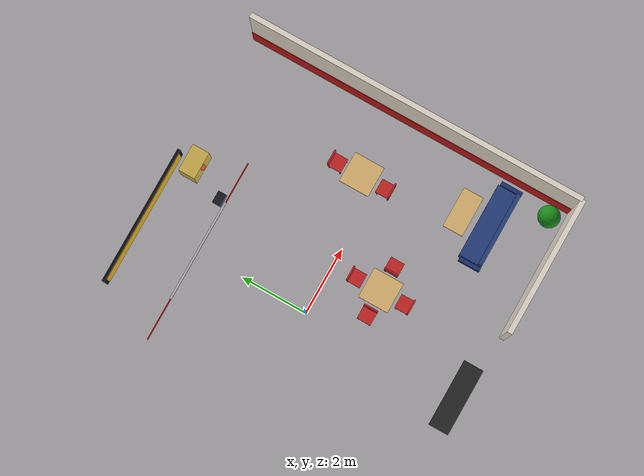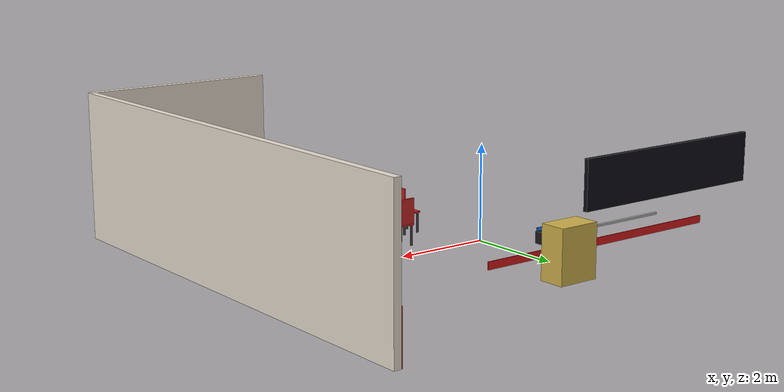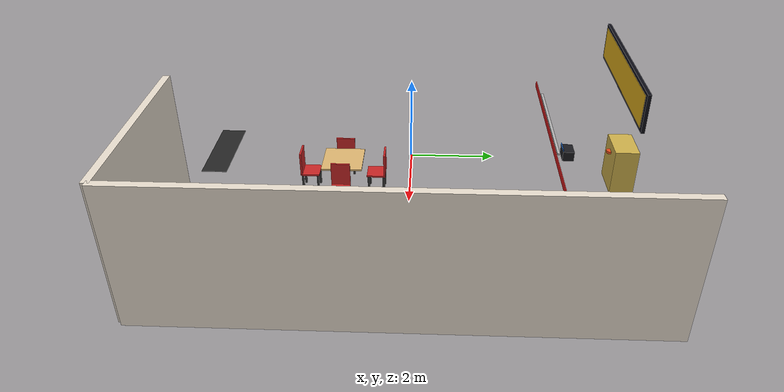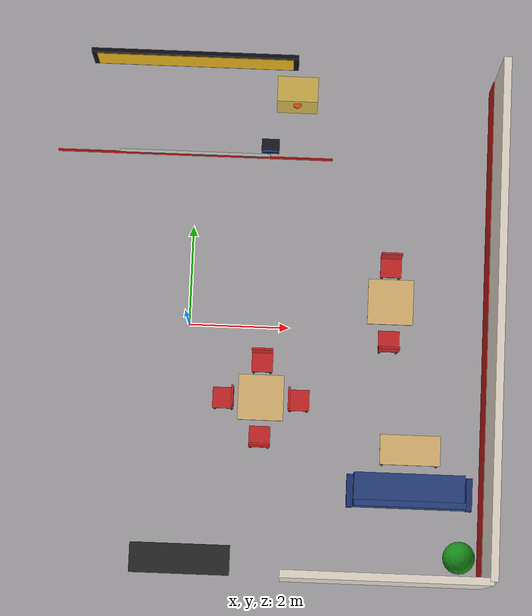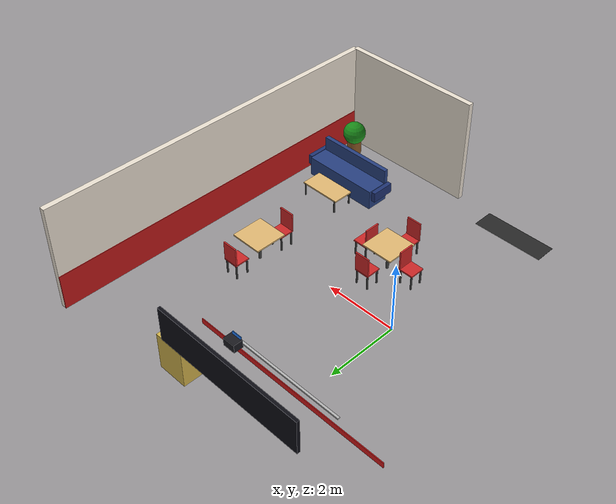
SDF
<sdf version="1.9">
 <world name="mcdonalds_cafe">
  <model name="wall_front_right">
   <static>true</static>
   <pose>4 -5.0 1.5 0 0 0</pose>
   <link name="link">
    <collision name="col"><geometry><box><size>4 0.15 3.0</size></box></geometry></collision>
    <visual name="vis">
     <geometry><box><size>4 0.15 3.0</size></box></geometry>
     <material><ambient>0.92 0.88 0.82 1</ambient><diffuse>0.92 0.88 0.82 1</diffuse></material>
    </visual>
   </link>
  </model>
  <model name="wall_right">
   <static>true</static>
   <pose>6.0 0 1.5 0 0 0</pose>
   <link name="link">
    <collision name="col"><geometry><box><size>0.15 10 3.0</size></box></geometry></collision>
    <visual name="vis">
     <geometry><box><size>0.15 10 3.0</size></box></geometry>
     <material><ambient>0.92 0.88 0.82 1</ambient><diffuse>0.92 0.88 0.82 1</diffuse></material>
    </visual>
   </link>
  </model>
  <model name="wainscot_right">
   <static>true</static>
   <pose>5.93 0 0.5 0 0 0</pose>
   <link name="link">
    <visual name="vis">
     <geometry><box><size>0.05 10 1.0</size></box></geometry>
     <material><ambient>0.75 0.1 0.1 1</ambient><diffuse>0.75 0.1 0.1 1</diffuse></material>
    </visual>
   </link>
  </model>
  <model name="counter_stripe">
   <static>true</static>
   <pose>0 3.345 0.7 0 0 0</pose>
   <link name="link">
    <visual name="vis">
     <geometry><box><size>5.5 0.02 0.15</size></box></geometry>
     <material><ambient>0.85 0.1 0.1 1</ambient><diffuse>0.85 0.1 0.1 1</diffuse></material>
    </visual>
   </link>
  </model>
  <model name="cash_register_2">
   <static>true</static>
   <pose>1.5 3.5 1.05 0 0 0</pose>
   <link name="link">
    <collision name="col"><geometry><box><size>0.35 0.25 0.22</size></box></geometry></collision>
    <visual name="vis">
     <geometry><box><size>0.35 0.25 0.22</size></box></geometry>
     <material>
      <ambient>0.1 0.1 0.12 1</ambient>
      <diffuse>0.1 0.1 0.12 1</diffuse>
      <specular>0.4 0.4 0.4 1</specular>
     </material>
    </visual>
    <visual name="screen">
     <pose>0 -0.1 0.08 0.3 0 0</pose>
     <geometry><box><size>0.28 0.02 0.18</size></box></geometry>
     <material>
      <ambient>0.1 0.4 0.8 1</ambient>
      <diffuse>0.1 0.4 0.8 1</diffuse>
      <emissive>0.05 0.2 0.5 1</emissive>
     </material>
    </visual>
   </link>
  </model>
  <model name="menu_board">
   <static>true</static>
   <pose>0 4.9 2.3 0 0 0</pose>
   <link name="link">
    <visual name="vis">
     <geometry><box><size>4.0 0.08 0.9</size></box></geometry>
     <material>
      <ambient>0.05 0.05 0.08 1</ambient>
      <diffuse>0.05 0.05 0.08 1</diffuse>
      <emissive>0.02 0.02 0.05 1</emissive>
     </material>
    </visual>
    <visual name="menu_screen">
     <pose>0 -0.05 0 0 0 0</pose>
     <geometry><box><size>3.8 0.01 0.75</size></box></geometry>
     <material>
      <ambient>0.9 0.7 0.1 1</ambient>
      <diffuse>0.9 0.7 0.1 1</diffuse>
      <emissive>0.4 0.3 0.05 1</emissive>
     </material>
    </visual>
   </link>
  </model>
  <model name="pickup_rail">
   <static>true</static>
   <pose>0 3.32 1.0 0 0 0</pose>
   <link name="link">
    <collision name="col"><geometry><box><size>3.0 0.06 0.04</size></box></geometry></collision>
    <visual name="vis">
     <geometry><box><size>3.0 0.06 0.04</size></box></geometry>
     <material>
      <ambient>0.7 0.7 0.7 1</ambient>
      <diffuse>0.7 0.7 0.7 1</diffuse>
      <specular>0.9 0.9 0.9 1</specular>
     </material>
    </visual>
   </link>
  </model>
  <model name="table_2">
   <static>true</static>
   <pose>1.5 -1.5 0.75 0 0 0</pose>
   <link name="link">
    <collision name="col"><geometry><box><size>0.9 0.9 0.04</size></box></geometry></collision>
    <visual name="vis">
     <geometry><box><size>0.9 0.9 0.04</size></box></geometry>
     <material>
      <ambient>0.88 0.72 0.45 1</ambient>
      <diffuse>0.88 0.72 0.45 1</diffuse>
      <specular>0.3 0.3 0.3 1</specular>
     </material>
    </visual>
   </link>
  </model>
  <model name="table_2_leg">
   <static>true</static>
   <pose>1.5 -1.5 0.38 0 0 0</pose>
   <link name="link">
    <collision name="col">
     <geometry><cylinder><radius>0.04</radius><length>0.75</length></cylinder></geometry>
    </collision>
    <visual name="vis">
     <geometry><cylinder><radius>0.04</radius><length>0.75</length></cylinder></geometry>
     <material><ambient>0.25 0.25 0.25 1</ambient><diffuse>0.25 0.25 0.25 1</diffuse></material>
    </visual>
   </link>
  </model>
  <model name="chair_t2_front">
   <static>true</static>
   <pose>1.5 -2.25 0 0 0 0</pose>
   <link name="link">
    <visual name="seat">
     <pose>0 0 0.44 0 0 0</pose>
     <geometry><box><size>0.42 0.42 0.04</size></box></geometry>
     <material><ambient>0.8 0.15 0.15 1</ambient><diffuse>0.8 0.15 0.15 1</diffuse></material>
    </visual>
    <visual name="back">
     <pose>0 -0.19 0.72 0 0 0</pose>
     <geometry><box><size>0.42 0.04 0.52</size></box></geometry>
     <material><ambient>0.8 0.15 0.15 1</ambient><diffuse>0.8 0.15 0.15 1</diffuse></material>
    </visual>
    <visual name="leg_fl">
     <pose>0.17 0.17 0.22 0 0 0</pose>
     <geometry><cylinder><radius>0.025</radius><length>0.44</length></cylinder></geometry>
     <material><ambient>0.2 0.2 0.2 1</ambient><diffuse>0.2 0.2 0.2 1</diffuse></material>
    </visual>
    <visual name="leg_fr">
     <pose>-0.17 0.17 0.22 0 0 0</pose>
     <geometry><cylinder><radius>0.025</radius><length>0.44</length></cylinder></geometry>
     <material><ambient>0.2 0.2 0.2 1</ambient><diffuse>0.2 0.2 0.2 1</diffuse></material>
    </visual>
    <visual name="leg_bl">
     <pose>0.17 -0.17 0.22 0 0 0</pose>
     <geometry><cylinder><radius>0.025</radius><length>0.44</length></cylinder></geometry>
     <material><ambient>0.2 0.2 0.2 1</ambient><diffuse>0.2 0.2 0.2 1</diffuse></material>
    </visual>
    <visual name="leg_br">
     <pose>-0.17 -0.17 0.22 0 0 0</pose>
     <geometry><cylinder><radius>0.025</radius><length>0.44</length></cylinder></geometry>
     <material><ambient>0.2 0.2 0.2 1</ambient><diffuse>0.2 0.2 0.2 1</diffuse></material>
    </visual>
    <collision name="col">
     <pose>0 0 0.44 0 0 0</pose>
     <geometry><box><size>0.42 0.42 0.04</size></box></geometry>
    </collision>
   </link>
  </model>
  <model name="chair_t2_back">
   <static>true</static>
   <pose>1.5 -0.75 0 0 0 3.1416</pose>
   <link name="link">
    <visual name="seat">
     <pose>0 0 0.44 0 0 0</pose>
     <geometry><box><size>0.42 0.42 0.04</size></box></geometry>
     <material><ambient>0.8 0.15 0.15 1</ambient><diffuse>0.8 0.15 0.15 1</diffuse></material>
    </visual>
    <visual name="back">
     <pose>0 -0.19 0.72 0 0 0</pose>
     <geometry><box><size>0.42 0.04 0.52</size></box></geometry>
     <material><ambient>0.8 0.15 0.15 1</ambient><diffuse>0.8 0.15 0.15 1</diffuse></material>
    </visual>
    <visual name="leg_fl">
     <pose>0.17 0.17 0.22 0 0 0</pose>
     <geometry><cylinder><radius>0.025</radius><length>0.44</length></cylinder></geometry>
     <material><ambient>0.2 0.2 0.2 1</ambient><diffuse>0.2 0.2 0.2 1</diffuse></material>
    </visual>
    <visual name="leg_fr">
     <pose>-0.17 0.17 0.22 0 0 0</pose>
     <geometry><cylinder><radius>0.025</radius><length>0.44</length></cylinder></geometry>
     <material><ambient>0.2 0.2 0.2 1</ambient><diffuse>0.2 0.2 0.2 1</diffuse></material>
    </visual>
    <visual name="leg_bl">
     <pose>0.17 -0.17 0.22 0 0 0</pose>
     <geometry><cylinder><radius>0.025</radius><length>0.44</length></cylinder></geometry>
     <material><ambient>0.2 0.2 0.2 1</ambient><diffuse>0.2 0.2 0.2 1</diffuse></material>
    </visual>
    <visual name="leg_br">
     <pose>-0.17 -0.17 0.22 0 0 0</pose>
     <geometry><cylinder><radius>0.025</radius><length>0.44</length></cylinder></geometry>
     <material><ambient>0.2 0.2 0.2 1</ambient><diffuse>0.2 0.2 0.2 1</diffuse></material>
    </visual>
    <collision name="col">
     <pose>0 0 0.44 0 0 0</pose>
     <geometry><box><size>0.42 0.42 0.04</size></box></geometry>
    </collision>
   </link>
  </model>
  <model name="chair_t2_left">
   <static>true</static>
   <pose>0.75 -1.5 0 0 0 1.5708</pose>
   <link name="link">
    <visual name="seat">
     <pose>0 0 0.44 0 0 0</pose>
     <geometry><box><size>0.42 0.42 0.04</size></box></geometry>
     <material><ambient>0.8 0.15 0.15 1</ambient><diffuse>0.8 0.15 0.15 1</diffuse></material>
    </visual>
    <visual name="back">
     <pose>0 -0.19 0.72 0 0 0</pose>
     <geometry><box><size>0.42 0.04 0.52</size></box></geometry>
     <material><ambient>0.8 0.15 0.15 1</ambient><diffuse>0.8 0.15 0.15 1</diffuse></material>
    </visual>
    <visual name="leg_fl">
     <pose>0.17 0.17 0.22 0 0 0</pose>
     <geometry><cylinder><radius>0.025</radius><length>0.44</length></cylinder></geometry>
     <material><ambient>0.2 0.2 0.2 1</ambient><diffuse>0.2 0.2 0.2 1</diffuse></material>
    </visual>
    <visual name="leg_fr">
     <pose>-0.17 0.17 0.22 0 0 0</pose>
     <geometry><cylinder><radius>0.025</radius><length>0.44</length></cylinder></geometry>
     <material><ambient>0.2 0.2 0.2 1</ambient><diffuse>0.2 0.2 0.2 1</diffuse></material>
    </visual>
    <visual name="leg_bl">
     <pose>0.17 -0.17 0.22 0 0 0</pose>
     <geometry><cylinder><radius>0.025</radius><length>0.44</length></cylinder></geometry>
     <material><ambient>0.2 0.2 0.2 1</ambient><diffuse>0.2 0.2 0.2 1</diffuse></material>
    </visual>
    <visual name="leg_br">
     <pose>-0.17 -0.17 0.22 0 0 0</pose>
     <geometry><cylinder><radius>0.025</radius><length>0.44</length></cylinder></geometry>
     <material><ambient>0.2 0.2 0.2 1</ambient><diffuse>0.2 0.2 0.2 1</diffuse></material>
    </visual>
    <collision name="col">
     <pose>0 0 0.44 0 0 0</pose>
     <geometry><box><size>0.42 0.42 0.04</size></box></geometry>
    </collision>
   </link>
  </model>
  <model name="chair_t2_right">
   <static>true</static>
   <pose>2.25 -1.5 0 0 0 -1.5708</pose>
   <link name="link">
    <visual name="seat">
     <pose>0 0 0.44 0 0 0</pose>
     <geometry><box><size>0.42 0.42 0.04</size></box></geometry>
     <material><ambient>0.8 0.15 0.15 1</ambient><diffuse>0.8 0.15 0.15 1</diffuse></material>
    </visual>
    <visual name="back">
     <pose>0 -0.19 0.72 0 0 0</pose>
     <geometry><box><size>0.42 0.04 0.52</size></box></geometry>
     <material><ambient>0.8 0.15 0.15 1</ambient><diffuse>0.8 0.15 0.15 1</diffuse></material>
    </visual>
    <visual name="leg_fl">
     <pose>0.17 0.17 0.22 0 0 0</pose>
     <geometry><cylinder><radius>0.025</radius><length>0.44</length></cylinder></geometry>
     <material><ambient>0.2 0.2 0.2 1</ambient><diffuse>0.2 0.2 0.2 1</diffuse></material>
    </visual>
    <visual name="leg_fr">
     <pose>-0.17 0.17 0.22 0 0 0</pose>
     <geometry><cylinder><radius>0.025</radius><length>0.44</length></cylinder></geometry>
     <material><ambient>0.2 0.2 0.2 1</ambient><diffuse>0.2 0.2 0.2 1</diffuse></material>
    </visual>
    <visual name="leg_bl">
     <pose>0.17 -0.17 0.22 0 0 0</pose>
     <geometry><cylinder><radius>0.025</radius><length>0.44</length></cylinder></geometry>
     <material><ambient>0.2 0.2 0.2 1</ambient><diffuse>0.2 0.2 0.2 1</diffuse></material>
    </visual>
    <visual name="leg_br">
     <pose>-0.17 -0.17 0.22 0 0 0</pose>
     <geometry><cylinder><radius>0.025</radius><length>0.44</length></cylinder></geometry>
     <material><ambient>0.2 0.2 0.2 1</ambient><diffuse>0.2 0.2 0.2 1</diffuse></material>
    </visual>
    <collision name="col">
     <pose>0 0 0.44 0 0 0</pose>
     <geometry><box><size>0.42 0.42 0.04</size></box></geometry>
    </collision>
   </link>
  </model>
  <model name="table_3">
   <static>true</static>
   <pose>4.0 0.5 0.75 0 0 0</pose>
   <link name="link">
    <collision name="col"><geometry><box><size>0.9 0.9 0.04</size></box></geometry></collision>
    <visual name="vis">
     <geometry><box><size>0.9 0.9 0.04</size></box></geometry>
     <material>
      <ambient>0.88 0.72 0.45 1</ambient>
      <diffuse>0.88 0.72 0.45 1</diffuse>
      <specular>0.3 0.3 0.3 1</specular>
     </material>
    </visual>
   </link>
  </model>
  <model name="table_3_leg">
   <static>true</static>
   <pose>4.0 0.5 0.38 0 0 0</pose>
   <link name="link">
    <collision name="col">
     <geometry><cylinder><radius>0.04</radius><length>0.75</length></cylinder></geometry>
    </collision>
    <visual name="vis">
     <geometry><cylinder><radius>0.04</radius><length>0.75</length></cylinder></geometry>
     <material><ambient>0.25 0.25 0.25 1</ambient><diffuse>0.25 0.25 0.25 1</diffuse></material>
    </visual>
   </link>
  </model>
  <model name="chair_t3_front">
   <static>true</static>
   <pose>4.0 -0.25 0 0 0 0</pose>
   <link name="link">
    <visual name="seat">
     <pose>0 0 0.44 0 0 0</pose>
     <geometry><box><size>0.42 0.42 0.04</size></box></geometry>
     <material><ambient>0.8 0.15 0.15 1</ambient><diffuse>0.8 0.15 0.15 1</diffuse></material>
    </visual>
    <visual name="back">
     <pose>0 -0.19 0.72 0 0 0</pose>
     <geometry><box><size>0.42 0.04 0.52</size></box></geometry>
     <material><ambient>0.8 0.15 0.15 1</ambient><diffuse>0.8 0.15 0.15 1</diffuse></material>
    </visual>
    <visual name="leg_fl">
     <pose>0.17 0.17 0.22 0 0 0</pose>
     <geometry><cylinder><radius>0.025</radius><length>0.44</length></cylinder></geometry>
     <material><ambient>0.2 0.2 0.2 1</ambient><diffuse>0.2 0.2 0.2 1</diffuse></material>
    </visual>
    <visual name="leg_fr">
     <pose>-0.17 0.17 0.22 0 0 0</pose>
     <geometry><cylinder><radius>0.025</radius><length>0.44</length></cylinder></geometry>
     <material><ambient>0.2 0.2 0.2 1</ambient><diffuse>0.2 0.2 0.2 1</diffuse></material>
    </visual>
    <visual name="leg_bl">
     <pose>0.17 -0.17 0.22 0 0 0</pose>
     <geometry><cylinder><radius>0.025</radius><length>0.44</length></cylinder></geometry>
     <material><ambient>0.2 0.2 0.2 1</ambient><diffuse>0.2 0.2 0.2 1</diffuse></material>
    </visual>
    <visual name="leg_br">
     <pose>-0.17 -0.17 0.22 0 0 0</pose>
     <geometry><cylinder><radius>0.025</radius><length>0.44</length></cylinder></geometry>
     <material><ambient>0.2 0.2 0.2 1</ambient><diffuse>0.2 0.2 0.2 1</diffuse></material>
    </visual>
    <collision name="col">
     <pose>0 0 0.44 0 0 0</pose>
     <geometry><box><size>0.42 0.42 0.04</size></box></geometry>
    </collision>
   </link>
  </model>
  <model name="chair_t3_back">
   <static>true</static>
   <pose>4.0 1.25 0 0 0 3.1416</pose>
   <link name="link">
    <visual name="seat">
     <pose>0 0 0.44 0 0 0</pose>
     <geometry><box><size>0.42 0.42 0.04</size></box></geometry>
     <material><ambient>0.8 0.15 0.15 1</ambient><diffuse>0.8 0.15 0.15 1</diffuse></material>
    </visual>
    <visual name="back">
     <pose>0 -0.19 0.72 0 0 0</pose>
     <geometry><box><size>0.42 0.04 0.52</size></box></geometry>
     <material><ambient>0.8 0.15 0.15 1</ambient><diffuse>0.8 0.15 0.15 1</diffuse></material>
    </visual>
    <visual name="leg_fl">
     <pose>0.17 0.17 0.22 0 0 0</pose>
     <geometry><cylinder><radius>0.025</radius><length>0.44</length></cylinder></geometry>
     <material><ambient>0.2 0.2 0.2 1</ambient><diffuse>0.2 0.2 0.2 1</diffuse></material>
    </visual>
    <visual name="leg_fr">
     <pose>-0.17 0.17 0.22 0 0 0</pose>
     <geometry><cylinder><radius>0.025</radius><length>0.44</length></cylinder></geometry>
     <material><ambient>0.2 0.2 0.2 1</ambient><diffuse>0.2 0.2 0.2 1</diffuse></material>
    </visual>
    <visual name="leg_bl">
     <pose>0.17 -0.17 0.22 0 0 0</pose>
     <geometry><cylinder><radius>0.025</radius><length>0.44</length></cylinder></geometry>
     <material><ambient>0.2 0.2 0.2 1</ambient><diffuse>0.2 0.2 0.2 1</diffuse></material>
    </visual>
    <visual name="leg_br">
     <pose>-0.17 -0.17 0.22 0 0 0</pose>
     <geometry><cylinder><radius>0.025</radius><length>0.44</length></cylinder></geometry>
     <material><ambient>0.2 0.2 0.2 1</ambient><diffuse>0.2 0.2 0.2 1</diffuse></material>
    </visual>
    <collision name="col">
     <pose>0 0 0.44 0 0 0</pose>
     <geometry><box><size>0.42 0.42 0.04</size></box></geometry>
    </collision>
   </link>
  </model>
  <model name="sofa_1_body">
   <static>true</static>
   <pose>4.5 -3.2 0.28 0 0 0</pose>
   <link name="link">
    <collision name="col"><geometry><box><size>2.2 0.65 0.56</size></box></geometry></collision>
    <visual name="vis">
     <geometry><box><size>2.2 0.65 0.56</size></box></geometry>
     <material><ambient>0.15 0.25 0.5 1</ambient><diffuse>0.15 0.25 0.5 1</diffuse></material>
    </visual>
   </link>
  </model>
  <model name="sofa_1_back">
   <static>true</static>
   <pose>4.5 -3.5 0.62 0 0 0</pose>
   <link name="link">
    <collision name="col"><geometry><box><size>2.2 0.12 0.68</size></box></geometry></collision>
    <visual name="vis">
     <geometry><box><size>2.2 0.12 0.68</size></box></geometry>
     <material><ambient>0.15 0.25 0.5 1</ambient><diffuse>0.15 0.25 0.5 1</diffuse></material>
    </visual>
   </link>
  </model>
  <model name="sofa_1_arm_left">
   <static>true</static>
   <pose>5.68 -3.25 0.42 0 0 0</pose>
   <link name="link">
    <collision name="col"><geometry><box><size>0.12 0.65 0.28</size></box></geometry></collision>
    <visual name="vis">
     <geometry><box><size>0.12 0.65 0.28</size></box></geometry>
     <material><ambient>0.12 0.2 0.45 1</ambient><diffuse>0.12 0.2 0.45 1</diffuse></material>
    </visual>
   </link>
  </model>
  <model name="sofa_1_arm_right">
   <static>true</static>
   <pose>3.32 -3.25 0.42 0 0 0</pose>
   <link name="link">
    <collision name="col"><geometry><box><size>0.12 0.65 0.28</size></box></geometry></collision>
    <visual name="vis">
     <geometry><box><size>0.12 0.65 0.28</size></box></geometry>
     <material><ambient>0.12 0.2 0.45 1</ambient><diffuse>0.12 0.2 0.45 1</diffuse></material>
    </visual>
   </link>
  </model>
  <model name="coffee_table_1">
   <static>true</static>
   <pose>4.5 -2.4 0.38 0 0 0</pose>
   <link name="link">
    <collision name="col"><geometry><box><size>1.2 0.6 0.04</size></box></geometry></collision>
    <visual name="vis">
     <geometry><box><size>1.2 0.6 0.04</size></box></geometry>
     <material>
      <ambient>0.88 0.72 0.45 1</ambient>
      <diffuse>0.88 0.72 0.45 1</diffuse>
      <specular>0.4 0.4 0.4 1</specular>
     </material>
    </visual>
   </link>
  </model>
  <model name="coffee_table_1_leg_fl">
   <static>true</static>
   <pose>5.04 -2.12 0.19 0 0 0</pose>
   <link name="link">
    <collision name="col">
     <geometry><cylinder><radius>0.025</radius><length>0.38</length></cylinder></geometry>
    </collision>
    <visual name="vis">
     <geometry><cylinder><radius>0.025</radius><length>0.38</length></cylinder></geometry>
     <material><ambient>0.2 0.2 0.2 1</ambient><diffuse>0.2 0.2 0.2 1</diffuse></material>
    </visual>
   </link>
  </model>
  <model name="coffee_table_1_leg_fr">
   <static>true</static>
   <pose>3.96 -2.12 0.19 0 0 0</pose>
   <link name="link">
    <collision name="col">
     <geometry><cylinder><radius>0.025</radius><length>0.38</length></cylinder></geometry>
    </collision>
    <visual name="vis">
     <geometry><cylinder><radius>0.025</radius><length>0.38</length></cylinder></geometry>
     <material><ambient>0.2 0.2 0.2 1</ambient><diffuse>0.2 0.2 0.2 1</diffuse></material>
    </visual>
   </link>
  </model>
  <model name="coffee_table_1_leg_bl">
   <static>true</static>
   <pose>5.04 -2.68 0.19 0 0 0</pose>
   <link name="link">
    <collision name="col">
     <geometry><cylinder><radius>0.025</radius><length>0.38</length></cylinder></geometry>
    </collision>
    <visual name="vis">
     <geometry><cylinder><radius>0.025</radius><length>0.38</length></cylinder></geometry>
     <material><ambient>0.2 0.2 0.2 1</ambient><diffuse>0.2 0.2 0.2 1</diffuse></material>
    </visual>
   </link>
  </model>
  <model name="coffee_table_1_leg_br">
   <static>true</static>
   <pose>3.96 -2.68 0.19 0 0 0</pose>
   <link name="link">
    <collision name="col">
     <geometry><cylinder><radius>0.025</radius><length>0.38</length></cylinder></geometry>
    </collision>
    <visual name="vis">
     <geometry><cylinder><radius>0.025</radius><length>0.38</length></cylinder></geometry>
     <material><ambient>0.2 0.2 0.2 1</ambient><diffuse>0.2 0.2 0.2 1</diffuse></material>
    </visual>
   </link>
  </model>
  <model name="plant_pot">
   <static>true</static>
   <pose>5.5 -4.5 0.25 0 0 0</pose>
   <link name="link">
    <collision name="col">
     <geometry><cylinder><radius>0.2</radius><length>0.5</length></cylinder></geometry>
    </collision>
    <visual name="pot">
     <geometry><cylinder><radius>0.2</radius><length>0.5</length></cylinder></geometry>
     <material><ambient>0.55 0.35 0.15 1</ambient><diffuse>0.55 0.35 0.15 1</diffuse></material>
    </visual>
    <visual name="plant">
     <pose>0 0 0.4 0 0 0</pose>
     <geometry><sphere><radius>0.32</radius></sphere></geometry>
     <material><ambient>0.1 0.55 0.1 1</ambient><diffuse>0.1 0.55 0.1 1</diffuse></material>
    </visual>
   </link>
  </model>
  <model name="food_warmer">
   <static>true</static>
   <pose>2.0 4.55 1.1 0 0 0</pose>
   <link name="link">
    <collision name="col"><geometry><box><size>0.8 0.5 1.0</size></box></geometry></collision>
    <visual name="body">
     <geometry><box><size>0.8 0.5 1.0</size></box></geometry>
     <material>
      <ambient>0.82 0.7 0.3 1</ambient>
      <diffuse>0.82 0.7 0.3 1</diffuse>
      <specular>0.3 0.3 0.3 1</specular>
     </material>
    </visual>
    <visual name="heat_lamp">
     <pose>0 -0.26 0.3 0 0 0</pose>
     <geometry><cylinder><radius>0.08</radius><length>0.05</length></cylinder></geometry>
     <material>
      <ambient>0.9 0.3 0.1 1</ambient>
      <diffuse>0.9 0.3 0.1 1</diffuse>
      <emissive>0.5 0.15 0.05 1</emissive>
     </material>
    </visual>
   </link>
  </model>
  <model name="entrance_mat">
   <static>true</static>
   <pose>0 -4.7 0.026 0 0 0</pose>
   <link name="link">
    <visual name="vis">
     <geometry><box><size>2.0 0.6 0.01</size></box></geometry>
     <material><ambient>0.15 0.15 0.15 1</ambient><diffuse>0.15 0.15 0.15 1</diffuse></material>
    </visual>
   </link>
  </model>
 </world>
</sdf>
